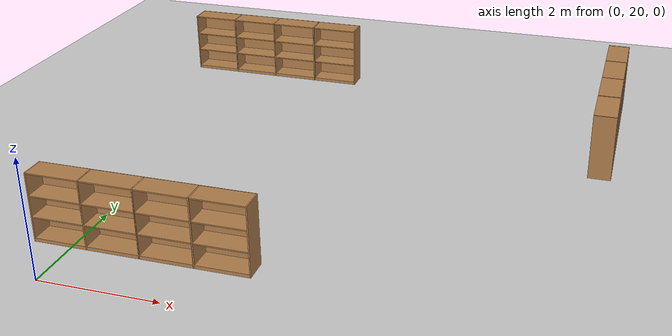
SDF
<sdf version="1.6">
 <world name="default">
  <model name="ground_plane">
   <static>1</static>
   <link name="link">
    <collision name="collision">
     <geometry><plane><normal>0 0 1</normal><size>100 100</size></plane></geometry>
     <surface><friction><ode><mu>100</mu><mu2>50</mu2></ode></friction></surface>
    </collision>
    <visual name="visual">
     <cast_shadows>0</cast_shadows>
     <geometry><plane><normal>0 0 1</normal><size>100 100</size></plane></geometry>
     <material>
      <script><uri>file://media/materials/scripts/gazebo.material</uri><name>Gazebo/Grey</name></script>
     </material>
    </visual>
   </link>
  </model>
  <model name="Bookself-4_clone_0_clone">
   <model name="Bookself-3">
    <model name="bookshelf_0">
     <static>1</static>
     <link name="link">
      <inertial><mass>1</mass></inertial>
      <collision name="back">
       <pose>0 0.005 0.6 0 -0 0</pose>
       <geometry><box><size>0.9 0.01 1.2</size></box></geometry>
      </collision>
      <visual name="visual1">
       <pose>0 0.005 0.6 0 -0 0</pose>
       <geometry><box><size>0.9 0.01 1.2</size></box></geometry>
       <material>
        <script><uri>file://media/materials/scripts/gazebo.material</uri><name>Gazebo/Wood</name></script>
       </material>
      </visual>
      <collision name="left_side">
       <pose>0.45 -0.195 0.6 0 -0 0</pose>
       <geometry><box><size>0.02 0.4 1.2</size></box></geometry>
      </collision>
      <visual name="visual2">
       <pose>0.45 -0.195 0.6 0 -0 0</pose>
       <geometry><box><size>0.02 0.4 1.2</size></box></geometry>
       <material>
        <script><uri>file://media/materials/scripts/gazebo.material</uri><name>Gazebo/Wood</name></script>
       </material>
      </visual>
      <collision name="right_side">
       <pose>-0.45 -0.195 0.6 0 -0 0</pose>
       <geometry><box><size>0.02 0.4 1.2</size></box></geometry>
      </collision>
      <visual name="visual3">
       <pose>-0.45 -0.195 0.6 0 -0 0</pose>
       <geometry><box><size>0.02 0.4 1.2</size></box></geometry>
       <material>
        <script><uri>file://media/materials/scripts/gazebo.material</uri><name>Gazebo/Wood</name></script>
       </material>
      </visual>
      <collision name="bottom">
       <pose>0 -0.195 0.03 0 -0 0</pose>
       <geometry><box><size>0.88 0.4 0.06</size></box></geometry>
      </collision>
      <visual name="visual4">
       <pose>0 -0.195 0.03 0 -0 0</pose>
       <geometry><box><size>0.88 0.4 0.06</size></box></geometry>
       <material>
        <script><uri>file://media/materials/scripts/gazebo.material</uri><name>Gazebo/Wood</name></script>
       </material>
      </visual>
      <collision name="top">
       <pose>0 -0.195 1.19 0 -0 0</pose>
       <geometry><box><size>0.88 0.4 0.02</size></box></geometry>
      </collision>
      <visual name="visual5">
       <pose>0 -0.195 1.19 0 -0 0</pose>
       <geometry><box><size>0.88 0.4 0.02</size></box></geometry>
       <material>
        <script><uri>file://media/materials/scripts/gazebo.material</uri><name>Gazebo/Wood</name></script>
       </material>
      </visual>
      <collision name="low_shelf">
       <pose>0 -0.195 0.43 0 -0 0</pose>
       <geometry><box><size>0.88 0.4 0.02</size></box></geometry>
      </collision>
      <visual name="visual6">
       <pose>0 -0.195 0.43 0 -0 0</pose>
       <geometry><box><size>0.88 0.4 0.02</size></box></geometry>
       <material>
        <script><uri>file://media/materials/scripts/gazebo.material</uri><name>Gazebo/Wood</name></script>
       </material>
      </visual>
      <collision name="high_shelf">
       <pose>0 -0.195 0.8 0 -0 0</pose>
       <geometry><box><size>0.88 0.4 0.02</size></box></geometry>
      </collision>
      <visual name="visual7">
       <pose>0 -0.195 0.8 0 -0 0</pose>
       <geometry><box><size>0.88 0.4 0.02</size></box></geometry>
       <material>
        <script><uri>file://media/materials/scripts/gazebo.material</uri><name>Gazebo/Wood</name></script>
       </material>
      </visual>
     </link>
     <pose>-0.903039 0 0 0 -0 0</pose>
    </model>
    <model name="bookshelf_1">
     <static>1</static>
     <link name="link">
      <inertial><mass>1</mass></inertial>
      <collision name="back">
       <pose>0 0.005 0.6 0 -0 0</pose>
       <geometry><box><size>0.9 0.01 1.2</size></box></geometry>
      </collision>
      <visual name="visual1">
       <pose>0 0.005 0.6 0 -0 0</pose>
       <geometry><box><size>0.9 0.01 1.2</size></box></geometry>
       <material>
        <script><uri>file://media/materials/scripts/gazebo.material</uri><name>Gazebo/Wood</name></script>
       </material>
      </visual>
      <collision name="left_side">
       <pose>0.45 -0.195 0.6 0 -0 0</pose>
       <geometry><box><size>0.02 0.4 1.2</size></box></geometry>
      </collision>
      <visual name="visual2">
       <pose>0.45 -0.195 0.6 0 -0 0</pose>
       <geometry><box><size>0.02 0.4 1.2</size></box></geometry>
       <material>
        <script><uri>file://media/materials/scripts/gazebo.material</uri><name>Gazebo/Wood</name></script>
       </material>
      </visual>
      <collision name="right_side">
       <pose>-0.45 -0.195 0.6 0 -0 0</pose>
       <geometry><box><size>0.02 0.4 1.2</size></box></geometry>
      </collision>
      <visual name="visual3">
       <pose>-0.45 -0.195 0.6 0 -0 0</pose>
       <geometry><box><size>0.02 0.4 1.2</size></box></geometry>
       <material>
        <script><uri>file://media/materials/scripts/gazebo.material</uri><name>Gazebo/Wood</name></script>
       </material>
      </visual>
      <collision name="bottom">
       <pose>0 -0.195 0.03 0 -0 0</pose>
       <geometry><box><size>0.88 0.4 0.06</size></box></geometry>
      </collision>
      <visual name="visual4">
       <pose>0 -0.195 0.03 0 -0 0</pose>
       <geometry><box><size>0.88 0.4 0.06</size></box></geometry>
       <material>
        <script><uri>file://media/materials/scripts/gazebo.material</uri><name>Gazebo/Wood</name></script>
       </material>
      </visual>
      <collision name="top">
       <pose>0 -0.195 1.19 0 -0 0</pose>
       <geometry><box><size>0.88 0.4 0.02</size></box></geometry>
      </collision>
      <visual name="visual5">
       <pose>0 -0.195 1.19 0 -0 0</pose>
       <geometry><box><size>0.88 0.4 0.02</size></box></geometry>
       <material>
        <script><uri>file://media/materials/scripts/gazebo.material</uri><name>Gazebo/Wood</name></script>
       </material>
      </visual>
      <collision name="low_shelf">
       <pose>0 -0.195 0.43 0 -0 0</pose>
       <geometry><box><size>0.88 0.4 0.02</size></box></geometry>
      </collision>
      <visual name="visual6">
       <pose>0 -0.195 0.43 0 -0 0</pose>
       <geometry><box><size>0.88 0.4 0.02</size></box></geometry>
       <material>
        <script><uri>file://media/materials/scripts/gazebo.material</uri><name>Gazebo/Wood</name></script>
       </material>
      </visual>
      <collision name="high_shelf">
       <pose>0 -0.195 0.8 0 -0 0</pose>
       <geometry><box><size>0.88 0.4 0.02</size></box></geometry>
      </collision>
      <visual name="visual7">
       <pose>0 -0.195 0.8 0 -0 0</pose>
       <geometry><box><size>0.88 0.4 0.02</size></box></geometry>
       <material>
        <script><uri>file://media/materials/scripts/gazebo.material</uri><name>Gazebo/Wood</name></script>
       </material>
      </visual>
     </link>
     <pose>0.000535 0 0 0 -0 0</pose>
    </model>
    <model name="bookshelf_1_clone">
     <static>1</static>
     <link name="link">
      <inertial><mass>1</mass></inertial>
      <collision name="back">
       <pose>0 0.005 0.6 0 -0 0</pose>
       <geometry><box><size>0.9 0.01 1.2</size></box></geometry>
      </collision>
      <visual name="visual1">
       <pose>0 0.005 0.6 0 -0 0</pose>
       <geometry><box><size>0.9 0.01 1.2</size></box></geometry>
       <material>
        <script><uri>file://media/materials/scripts/gazebo.material</uri><name>Gazebo/Wood</name></script>
       </material>
      </visual>
      <collision name="left_side">
       <pose>0.45 -0.195 0.6 0 -0 0</pose>
       <geometry><box><size>0.02 0.4 1.2</size></box></geometry>
      </collision>
      <visual name="visual2">
       <pose>0.45 -0.195 0.6 0 -0 0</pose>
       <geometry><box><size>0.02 0.4 1.2</size></box></geometry>
       <material>
        <script><uri>file://media/materials/scripts/gazebo.material</uri><name>Gazebo/Wood</name></script>
       </material>
      </visual>
      <collision name="right_side">
       <pose>-0.45 -0.195 0.6 0 -0 0</pose>
       <geometry><box><size>0.02 0.4 1.2</size></box></geometry>
      </collision>
      <visual name="visual3">
       <pose>-0.45 -0.195 0.6 0 -0 0</pose>
       <geometry><box><size>0.02 0.4 1.2</size></box></geometry>
       <material>
        <script><uri>file://media/materials/scripts/gazebo.material</uri><name>Gazebo/Wood</name></script>
       </material>
      </visual>
      <collision name="bottom">
       <pose>0 -0.195 0.03 0 -0 0</pose>
       <geometry><box><size>0.88 0.4 0.06</size></box></geometry>
      </collision>
      <visual name="visual4">
       <pose>0 -0.195 0.03 0 -0 0</pose>
       <geometry><box><size>0.88 0.4 0.06</size></box></geometry>
       <material>
        <script><uri>file://media/materials/scripts/gazebo.material</uri><name>Gazebo/Wood</name></script>
       </material>
      </visual>
      <collision name="top">
       <pose>0 -0.195 1.19 0 -0 0</pose>
       <geometry><box><size>0.88 0.4 0.02</size></box></geometry>
      </collision>
      <visual name="visual5">
       <pose>0 -0.195 1.19 0 -0 0</pose>
       <geometry><box><size>0.88 0.4 0.02</size></box></geometry>
       <material>
        <script><uri>file://media/materials/scripts/gazebo.material</uri><name>Gazebo/Wood</name></script>
       </material>
      </visual>
      <collision name="low_shelf">
       <pose>0 -0.195 0.43 0 -0 0</pose>
       <geometry><box><size>0.88 0.4 0.02</size></box></geometry>
      </collision>
      <visual name="visual6">
       <pose>0 -0.195 0.43 0 -0 0</pose>
       <geometry><box><size>0.88 0.4 0.02</size></box></geometry>
       <material>
        <script><uri>file://media/materials/scripts/gazebo.material</uri><name>Gazebo/Wood</name></script>
       </material>
      </visual>
      <collision name="high_shelf">
       <pose>0 -0.195 0.8 0 -0 0</pose>
       <geometry><box><size>0.88 0.4 0.02</size></box></geometry>
      </collision>
      <visual name="visual7">
       <pose>0 -0.195 0.8 0 -0 0</pose>
       <geometry><box><size>0.88 0.4 0.02</size></box></geometry>
       <material>
        <script><uri>file://media/materials/scripts/gazebo.material</uri><name>Gazebo/Wood</name></script>
       </material>
      </visual>
     </link>
     <pose>0.902502 0 0 0 -0 0</pose>
    </model>
    <static>1</static>
    <pose>-0.906894 3e-05 0 0 -0 0</pose>
   </model>
   <model name="bookshelf">
    <static>1</static>
    <link name="link">
     <inertial><mass>1</mass></inertial>
     <collision name="back">
      <pose>0 0.005 0.6 0 -0 0</pose>
      <geometry><box><size>0.9 0.01 1.2</size></box></geometry>
     </collision>
     <visual name="visual1">
      <pose>0 0.005 0.6 0 -0 0</pose>
      <geometry><box><size>0.9 0.01 1.2</size></box></geometry>
      <material>
       <script><uri>file://media/materials/scripts/gazebo.material</uri><name>Gazebo/Wood</name></script>
      </material>
     </visual>
     <collision name="left_side">
      <pose>0.45 -0.195 0.6 0 -0 0</pose>
      <geometry><box><size>0.02 0.4 1.2</size></box></geometry>
     </collision>
     <visual name="visual2">
      <pose>0.45 -0.195 0.6 0 -0 0</pose>
      <geometry><box><size>0.02 0.4 1.2</size></box></geometry>
      <material>
       <script><uri>file://media/materials/scripts/gazebo.material</uri><name>Gazebo/Wood</name></script>
      </material>
     </visual>
     <collision name="right_side">
      <pose>-0.45 -0.195 0.6 0 -0 0</pose>
      <geometry><box><size>0.02 0.4 1.2</size></box></geometry>
     </collision>
     <visual name="visual3">
      <pose>-0.45 -0.195 0.6 0 -0 0</pose>
      <geometry><box><size>0.02 0.4 1.2</size></box></geometry>
      <material>
       <script><uri>file://media/materials/scripts/gazebo.material</uri><name>Gazebo/Wood</name></script>
      </material>
     </visual>
     <collision name="bottom">
      <pose>0 -0.195 0.03 0 -0 0</pose>
      <geometry><box><size>0.88 0.4 0.06</size></box></geometry>
     </collision>
     <visual name="visual4">
      <pose>0 -0.195 0.03 0 -0 0</pose>
      <geometry><box><size>0.88 0.4 0.06</size></box></geometry>
      <material>
       <script><uri>file://media/materials/scripts/gazebo.material</uri><name>Gazebo/Wood</name></script>
      </material>
     </visual>
     <collision name="top">
      <pose>0 -0.195 1.19 0 -0 0</pose>
      <geometry><box><size>0.88 0.4 0.02</size></box></geometry>
     </collision>
     <visual name="visual5">
      <pose>0 -0.195 1.19 0 -0 0</pose>
      <geometry><box><size>0.88 0.4 0.02</size></box></geometry>
      <material>
       <script><uri>file://media/materials/scripts/gazebo.material</uri><name>Gazebo/Wood</name></script>
      </material>
     </visual>
     <collision name="low_shelf">
      <pose>0 -0.195 0.43 0 -0 0</pose>
      <geometry><box><size>0.88 0.4 0.02</size></box></geometry>
     </collision>
     <visual name="visual6">
      <pose>0 -0.195 0.43 0 -0 0</pose>
      <geometry><box><size>0.88 0.4 0.02</size></box></geometry>
      <material>
       <script><uri>file://media/materials/scripts/gazebo.material</uri><name>Gazebo/Wood</name></script>
      </material>
     </visual>
     <collision name="high_shelf">
      <pose>0 -0.195 0.8 0 -0 0</pose>
      <geometry><box><size>0.88 0.4 0.02</size></box></geometry>
     </collision>
     <visual name="visual7">
      <pose>0 -0.195 0.8 0 -0 0</pose>
      <geometry><box><size>0.88 0.4 0.02</size></box></geometry>
      <material>
       <script><uri>file://media/materials/scripts/gazebo.material</uri><name>Gazebo/Wood</name></script>
      </material>
     </visual>
    </link>
    <pose>0.906808 3e-05 0 0 -0 0</pose>
   </model>
   <static>0</static>
   <pose>1.61635 21.337 0 0 -0 0</pose>
  </model>
  <model name="Bookself-4_clone_0_clone_0">
   <model name="Bookself-3">
    <model name="bookshelf_0">
     <static>1</static>
     <link name="link">
      <inertial><mass>1</mass></inertial>
      <collision name="back">
       <pose>0 0.005 0.6 0 -0 0</pose>
       <geometry><box><size>0.9 0.01 1.2</size></box></geometry>
      </collision>
      <visual name="visual1">
       <pose>0 0.005 0.6 0 -0 0</pose>
       <geometry><box><size>0.9 0.01 1.2</size></box></geometry>
       <material>
        <script><uri>file://media/materials/scripts/gazebo.material</uri><name>Gazebo/Wood</name></script>
       </material>
      </visual>
      <collision name="left_side">
       <pose>0.45 -0.195 0.6 0 -0 0</pose>
       <geometry><box><size>0.02 0.4 1.2</size></box></geometry>
      </collision>
      <visual name="visual2">
       <pose>0.45 -0.195 0.6 0 -0 0</pose>
       <geometry><box><size>0.02 0.4 1.2</size></box></geometry>
       <material>
        <script><uri>file://media/materials/scripts/gazebo.material</uri><name>Gazebo/Wood</name></script>
       </material>
      </visual>
      <collision name="right_side">
       <pose>-0.45 -0.195 0.6 0 -0 0</pose>
       <geometry><box><size>0.02 0.4 1.2</size></box></geometry>
      </collision>
      <visual name="visual3">
       <pose>-0.45 -0.195 0.6 0 -0 0</pose>
       <geometry><box><size>0.02 0.4 1.2</size></box></geometry>
       <material>
        <script><uri>file://media/materials/scripts/gazebo.material</uri><name>Gazebo/Wood</name></script>
       </material>
      </visual>
      <collision name="bottom">
       <pose>0 -0.195 0.03 0 -0 0</pose>
       <geometry><box><size>0.88 0.4 0.06</size></box></geometry>
      </collision>
      <visual name="visual4">
       <pose>0 -0.195 0.03 0 -0 0</pose>
       <geometry><box><size>0.88 0.4 0.06</size></box></geometry>
       <material>
        <script><uri>file://media/materials/scripts/gazebo.material</uri><name>Gazebo/Wood</name></script>
       </material>
      </visual>
      <collision name="top">
       <pose>0 -0.195 1.19 0 -0 0</pose>
       <geometry><box><size>0.88 0.4 0.02</size></box></geometry>
      </collision>
      <visual name="visual5">
       <pose>0 -0.195 1.19 0 -0 0</pose>
       <geometry><box><size>0.88 0.4 0.02</size></box></geometry>
       <material>
        <script><uri>file://media/materials/scripts/gazebo.material</uri><name>Gazebo/Wood</name></script>
       </material>
      </visual>
      <collision name="low_shelf">
       <pose>0 -0.195 0.43 0 -0 0</pose>
       <geometry><box><size>0.88 0.4 0.02</size></box></geometry>
      </collision>
      <visual name="visual6">
       <pose>0 -0.195 0.43 0 -0 0</pose>
       <geometry><box><size>0.88 0.4 0.02</size></box></geometry>
       <material>
        <script><uri>file://media/materials/scripts/gazebo.material</uri><name>Gazebo/Wood</name></script>
       </material>
      </visual>
      <collision name="high_shelf">
       <pose>0 -0.195 0.8 0 -0 0</pose>
       <geometry><box><size>0.88 0.4 0.02</size></box></geometry>
      </collision>
      <visual name="visual7">
       <pose>0 -0.195 0.8 0 -0 0</pose>
       <geometry><box><size>0.88 0.4 0.02</size></box></geometry>
       <material>
        <script><uri>file://media/materials/scripts/gazebo.material</uri><name>Gazebo/Wood</name></script>
       </material>
      </visual>
     </link>
     <pose>-0.903039 0 0 0 -0 0</pose>
    </model>
    <model name="bookshelf_1">
     <static>1</static>
     <link name="link">
      <inertial><mass>1</mass></inertial>
      <collision name="back">
       <pose>0 0.005 0.6 0 -0 0</pose>
       <geometry><box><size>0.9 0.01 1.2</size></box></geometry>
      </collision>
      <visual name="visual1">
       <pose>0 0.005 0.6 0 -0 0</pose>
       <geometry><box><size>0.9 0.01 1.2</size></box></geometry>
       <material>
        <script><uri>file://media/materials/scripts/gazebo.material</uri><name>Gazebo/Wood</name></script>
       </material>
      </visual>
      <collision name="left_side">
       <pose>0.45 -0.195 0.6 0 -0 0</pose>
       <geometry><box><size>0.02 0.4 1.2</size></box></geometry>
      </collision>
      <visual name="visual2">
       <pose>0.45 -0.195 0.6 0 -0 0</pose>
       <geometry><box><size>0.02 0.4 1.2</size></box></geometry>
       <material>
        <script><uri>file://media/materials/scripts/gazebo.material</uri><name>Gazebo/Wood</name></script>
       </material>
      </visual>
      <collision name="right_side">
       <pose>-0.45 -0.195 0.6 0 -0 0</pose>
       <geometry><box><size>0.02 0.4 1.2</size></box></geometry>
      </collision>
      <visual name="visual3">
       <pose>-0.45 -0.195 0.6 0 -0 0</pose>
       <geometry><box><size>0.02 0.4 1.2</size></box></geometry>
       <material>
        <script><uri>file://media/materials/scripts/gazebo.material</uri><name>Gazebo/Wood</name></script>
       </material>
      </visual>
      <collision name="bottom">
       <pose>0 -0.195 0.03 0 -0 0</pose>
       <geometry><box><size>0.88 0.4 0.06</size></box></geometry>
      </collision>
      <visual name="visual4">
       <pose>0 -0.195 0.03 0 -0 0</pose>
       <geometry><box><size>0.88 0.4 0.06</size></box></geometry>
       <material>
        <script><uri>file://media/materials/scripts/gazebo.material</uri><name>Gazebo/Wood</name></script>
       </material>
      </visual>
      <collision name="top">
       <pose>0 -0.195 1.19 0 -0 0</pose>
       <geometry><box><size>0.88 0.4 0.02</size></box></geometry>
      </collision>
      <visual name="visual5">
       <pose>0 -0.195 1.19 0 -0 0</pose>
       <geometry><box><size>0.88 0.4 0.02</size></box></geometry>
       <material>
        <script><uri>file://media/materials/scripts/gazebo.material</uri><name>Gazebo/Wood</name></script>
       </material>
      </visual>
      <collision name="low_shelf">
       <pose>0 -0.195 0.43 0 -0 0</pose>
       <geometry><box><size>0.88 0.4 0.02</size></box></geometry>
      </collision>
      <visual name="visual6">
       <pose>0 -0.195 0.43 0 -0 0</pose>
       <geometry><box><size>0.88 0.4 0.02</size></box></geometry>
       <material>
        <script><uri>file://media/materials/scripts/gazebo.material</uri><name>Gazebo/Wood</name></script>
       </material>
      </visual>
      <collision name="high_shelf">
       <pose>0 -0.195 0.8 0 -0 0</pose>
       <geometry><box><size>0.88 0.4 0.02</size></box></geometry>
      </collision>
      <visual name="visual7">
       <pose>0 -0.195 0.8 0 -0 0</pose>
       <geometry><box><size>0.88 0.4 0.02</size></box></geometry>
       <material>
        <script><uri>file://media/materials/scripts/gazebo.material</uri><name>Gazebo/Wood</name></script>
       </material>
      </visual>
     </link>
     <pose>0.000535 0 0 0 -0 0</pose>
    </model>
    <model name="bookshelf_1_clone">
     <static>1</static>
     <link name="link">
      <inertial><mass>1</mass></inertial>
      <collision name="back">
       <pose>0 0.005 0.6 0 -0 0</pose>
       <geometry><box><size>0.9 0.01 1.2</size></box></geometry>
      </collision>
      <visual name="visual1">
       <pose>0 0.005 0.6 0 -0 0</pose>
       <geometry><box><size>0.9 0.01 1.2</size></box></geometry>
       <material>
        <script><uri>file://media/materials/scripts/gazebo.material</uri><name>Gazebo/Wood</name></script>
       </material>
      </visual>
      <collision name="left_side">
       <pose>0.45 -0.195 0.6 0 -0 0</pose>
       <geometry><box><size>0.02 0.4 1.2</size></box></geometry>
      </collision>
      <visual name="visual2">
       <pose>0.45 -0.195 0.6 0 -0 0</pose>
       <geometry><box><size>0.02 0.4 1.2</size></box></geometry>
       <material>
        <script><uri>file://media/materials/scripts/gazebo.material</uri><name>Gazebo/Wood</name></script>
       </material>
      </visual>
      <collision name="right_side">
       <pose>-0.45 -0.195 0.6 0 -0 0</pose>
       <geometry><box><size>0.02 0.4 1.2</size></box></geometry>
      </collision>
      <visual name="visual3">
       <pose>-0.45 -0.195 0.6 0 -0 0</pose>
       <geometry><box><size>0.02 0.4 1.2</size></box></geometry>
       <material>
        <script><uri>file://media/materials/scripts/gazebo.material</uri><name>Gazebo/Wood</name></script>
       </material>
      </visual>
      <collision name="bottom">
       <pose>0 -0.195 0.03 0 -0 0</pose>
       <geometry><box><size>0.88 0.4 0.06</size></box></geometry>
      </collision>
      <visual name="visual4">
       <pose>0 -0.195 0.03 0 -0 0</pose>
       <geometry><box><size>0.88 0.4 0.06</size></box></geometry>
       <material>
        <script><uri>file://media/materials/scripts/gazebo.material</uri><name>Gazebo/Wood</name></script>
       </material>
      </visual>
      <collision name="top">
       <pose>0 -0.195 1.19 0 -0 0</pose>
       <geometry><box><size>0.88 0.4 0.02</size></box></geometry>
      </collision>
      <visual name="visual5">
       <pose>0 -0.195 1.19 0 -0 0</pose>
       <geometry><box><size>0.88 0.4 0.02</size></box></geometry>
       <material>
        <script><uri>file://media/materials/scripts/gazebo.material</uri><name>Gazebo/Wood</name></script>
       </material>
      </visual>
      <collision name="low_shelf">
       <pose>0 -0.195 0.43 0 -0 0</pose>
       <geometry><box><size>0.88 0.4 0.02</size></box></geometry>
      </collision>
      <visual name="visual6">
       <pose>0 -0.195 0.43 0 -0 0</pose>
       <geometry><box><size>0.88 0.4 0.02</size></box></geometry>
       <material>
        <script><uri>file://media/materials/scripts/gazebo.material</uri><name>Gazebo/Wood</name></script>
       </material>
      </visual>
      <collision name="high_shelf">
       <pose>0 -0.195 0.8 0 -0 0</pose>
       <geometry><box><size>0.88 0.4 0.02</size></box></geometry>
      </collision>
      <visual name="visual7">
       <pose>0 -0.195 0.8 0 -0 0</pose>
       <geometry><box><size>0.88 0.4 0.02</size></box></geometry>
       <material>
        <script><uri>file://media/materials/scripts/gazebo.material</uri><name>Gazebo/Wood</name></script>
       </material>
      </visual>
     </link>
     <pose>0.902502 0 0 0 -0 0</pose>
    </model>
    <static>1</static>
    <pose>-0.906894 3e-05 0 0 -0 0</pose>
   </model>
   <model name="bookshelf">
    <static>1</static>
    <link name="link">
     <inertial><mass>1</mass></inertial>
     <collision name="back">
      <pose>0 0.005 0.6 0 -0 0</pose>
      <geometry><box><size>0.9 0.01 1.2</size></box></geometry>
     </collision>
     <visual name="visual1">
      <pose>0 0.005 0.6 0 -0 0</pose>
      <geometry><box><size>0.9 0.01 1.2</size></box></geometry>
      <material>
       <script><uri>file://media/materials/scripts/gazebo.material</uri><name>Gazebo/Wood</name></script>
      </material>
     </visual>
     <collision name="left_side">
      <pose>0.45 -0.195 0.6 0 -0 0</pose>
      <geometry><box><size>0.02 0.4 1.2</size></box></geometry>
     </collision>
     <visual name="visual2">
      <pose>0.45 -0.195 0.6 0 -0 0</pose>
      <geometry><box><size>0.02 0.4 1.2</size></box></geometry>
      <material>
       <script><uri>file://media/materials/scripts/gazebo.material</uri><name>Gazebo/Wood</name></script>
      </material>
     </visual>
     <collision name="right_side">
      <pose>-0.45 -0.195 0.6 0 -0 0</pose>
      <geometry><box><size>0.02 0.4 1.2</size></box></geometry>
     </collision>
     <visual name="visual3">
      <pose>-0.45 -0.195 0.6 0 -0 0</pose>
      <geometry><box><size>0.02 0.4 1.2</size></box></geometry>
      <material>
       <script><uri>file://media/materials/scripts/gazebo.material</uri><name>Gazebo/Wood</name></script>
      </material>
     </visual>
     <collision name="bottom">
      <pose>0 -0.195 0.03 0 -0 0</pose>
      <geometry><box><size>0.88 0.4 0.06</size></box></geometry>
     </collision>
     <visual name="visual4">
      <pose>0 -0.195 0.03 0 -0 0</pose>
      <geometry><box><size>0.88 0.4 0.06</size></box></geometry>
      <material>
       <script><uri>file://media/materials/scripts/gazebo.material</uri><name>Gazebo/Wood</name></script>
      </material>
     </visual>
     <collision name="top">
      <pose>0 -0.195 1.19 0 -0 0</pose>
      <geometry><box><size>0.88 0.4 0.02</size></box></geometry>
     </collision>
     <visual name="visual5">
      <pose>0 -0.195 1.19 0 -0 0</pose>
      <geometry><box><size>0.88 0.4 0.02</size></box></geometry>
      <material>
       <script><uri>file://media/materials/scripts/gazebo.material</uri><name>Gazebo/Wood</name></script>
      </material>
     </visual>
     <collision name="low_shelf">
      <pose>0 -0.195 0.43 0 -0 0</pose>
      <geometry><box><size>0.88 0.4 0.02</size></box></geometry>
     </collision>
     <visual name="visual6">
      <pose>0 -0.195 0.43 0 -0 0</pose>
      <geometry><box><size>0.88 0.4 0.02</size></box></geometry>
      <material>
       <script><uri>file://media/materials/scripts/gazebo.material</uri><name>Gazebo/Wood</name></script>
      </material>
     </visual>
     <collision name="high_shelf">
      <pose>0 -0.195 0.8 0 -0 0</pose>
      <geometry><box><size>0.88 0.4 0.02</size></box></geometry>
     </collision>
     <visual name="visual7">
      <pose>0 -0.195 0.8 0 -0 0</pose>
      <geometry><box><size>0.88 0.4 0.02</size></box></geometry>
      <material>
       <script><uri>file://media/materials/scripts/gazebo.material</uri><name>Gazebo/Wood</name></script>
      </material>
     </visual>
    </link>
    <pose>0.906808 3e-05 0 0 -0 0</pose>
   </model>
   <static>0</static>
   <pose>0.839929 28.8868 0 0 -0 0</pose>
  </model>
  <model name="Bookself-4_clone_14_clone_3_clone_clone">
   <model name="Bookself-3">
    <model name="bookshelf_0">
     <static>1</static>
     <link name="link">
      <inertial><mass>1</mass></inertial>
      <collision name="back">
       <pose>0 0.005 0.6 0 -0 0</pose>
       <geometry><box><size>0.9 0.01 1.2</size></box></geometry>
      </collision>
      <visual name="visual1">
       <pose>0 0.005 0.6 0 -0 0</pose>
       <geometry><box><size>0.9 0.01 1.2</size></box></geometry>
       <material>
        <script><uri>file://media/materials/scripts/gazebo.material</uri><name>Gazebo/Wood</name></script>
       </material>
      </visual>
      <collision name="left_side">
       <pose>0.45 -0.195 0.6 0 -0 0</pose>
       <geometry><box><size>0.02 0.4 1.2</size></box></geometry>
      </collision>
      <visual name="visual2">
       <pose>0.45 -0.195 0.6 0 -0 0</pose>
       <geometry><box><size>0.02 0.4 1.2</size></box></geometry>
       <material>
        <script><uri>file://media/materials/scripts/gazebo.material</uri><name>Gazebo/Wood</name></script>
       </material>
      </visual>
      <collision name="right_side">
       <pose>-0.45 -0.195 0.6 0 -0 0</pose>
       <geometry><box><size>0.02 0.4 1.2</size></box></geometry>
      </collision>
      <visual name="visual3">
       <pose>-0.45 -0.195 0.6 0 -0 0</pose>
       <geometry><box><size>0.02 0.4 1.2</size></box></geometry>
       <material>
        <script><uri>file://media/materials/scripts/gazebo.material</uri><name>Gazebo/Wood</name></script>
       </material>
      </visual>
      <collision name="bottom">
       <pose>0 -0.195 0.03 0 -0 0</pose>
       <geometry><box><size>0.88 0.4 0.06</size></box></geometry>
      </collision>
      <visual name="visual4">
       <pose>0 -0.195 0.03 0 -0 0</pose>
       <geometry><box><size>0.88 0.4 0.06</size></box></geometry>
       <material>
        <script><uri>file://media/materials/scripts/gazebo.material</uri><name>Gazebo/Wood</name></script>
       </material>
      </visual>
      <collision name="top">
       <pose>0 -0.195 1.19 0 -0 0</pose>
       <geometry><box><size>0.88 0.4 0.02</size></box></geometry>
      </collision>
      <visual name="visual5">
       <pose>0 -0.195 1.19 0 -0 0</pose>
       <geometry><box><size>0.88 0.4 0.02</size></box></geometry>
       <material>
        <script><uri>file://media/materials/scripts/gazebo.material</uri><name>Gazebo/Wood</name></script>
       </material>
      </visual>
      <collision name="low_shelf">
       <pose>0 -0.195 0.43 0 -0 0</pose>
       <geometry><box><size>0.88 0.4 0.02</size></box></geometry>
      </collision>
      <visual name="visual6">
       <pose>0 -0.195 0.43 0 -0 0</pose>
       <geometry><box><size>0.88 0.4 0.02</size></box></geometry>
       <material>
        <script><uri>file://media/materials/scripts/gazebo.material</uri><name>Gazebo/Wood</name></script>
       </material>
      </visual>
      <collision name="high_shelf">
       <pose>0 -0.195 0.8 0 -0 0</pose>
       <geometry><box><size>0.88 0.4 0.02</size></box></geometry>
      </collision>
      <visual name="visual7">
       <pose>0 -0.195 0.8 0 -0 0</pose>
       <geometry><box><size>0.88 0.4 0.02</size></box></geometry>
       <material>
        <script><uri>file://media/materials/scripts/gazebo.material</uri><name>Gazebo/Wood</name></script>
       </material>
      </visual>
     </link>
     <pose>-0.903039 0 0 0 -0 0</pose>
    </model>
    <model name="bookshelf_1">
     <static>1</static>
     <link name="link">
      <inertial><mass>1</mass></inertial>
      <collision name="back">
       <pose>0 0.005 0.6 0 -0 0</pose>
       <geometry><box><size>0.9 0.01 1.2</size></box></geometry>
      </collision>
      <visual name="visual1">
       <pose>0 0.005 0.6 0 -0 0</pose>
       <geometry><box><size>0.9 0.01 1.2</size></box></geometry>
       <material>
        <script><uri>file://media/materials/scripts/gazebo.material</uri><name>Gazebo/Wood</name></script>
       </material>
      </visual>
      <collision name="left_side">
       <pose>0.45 -0.195 0.6 0 -0 0</pose>
       <geometry><box><size>0.02 0.4 1.2</size></box></geometry>
      </collision>
      <visual name="visual2">
       <pose>0.45 -0.195 0.6 0 -0 0</pose>
       <geometry><box><size>0.02 0.4 1.2</size></box></geometry>
       <material>
        <script><uri>file://media/materials/scripts/gazebo.material</uri><name>Gazebo/Wood</name></script>
       </material>
      </visual>
      <collision name="right_side">
       <pose>-0.45 -0.195 0.6 0 -0 0</pose>
       <geometry><box><size>0.02 0.4 1.2</size></box></geometry>
      </collision>
      <visual name="visual3">
       <pose>-0.45 -0.195 0.6 0 -0 0</pose>
       <geometry><box><size>0.02 0.4 1.2</size></box></geometry>
       <material>
        <script><uri>file://media/materials/scripts/gazebo.material</uri><name>Gazebo/Wood</name></script>
       </material>
      </visual>
      <collision name="bottom">
       <pose>0 -0.195 0.03 0 -0 0</pose>
       <geometry><box><size>0.88 0.4 0.06</size></box></geometry>
      </collision>
      <visual name="visual4">
       <pose>0 -0.195 0.03 0 -0 0</pose>
       <geometry><box><size>0.88 0.4 0.06</size></box></geometry>
       <material>
        <script><uri>file://media/materials/scripts/gazebo.material</uri><name>Gazebo/Wood</name></script>
       </material>
      </visual>
      <collision name="top">
       <pose>0 -0.195 1.19 0 -0 0</pose>
       <geometry><box><size>0.88 0.4 0.02</size></box></geometry>
      </collision>
      <visual name="visual5">
       <pose>0 -0.195 1.19 0 -0 0</pose>
       <geometry><box><size>0.88 0.4 0.02</size></box></geometry>
       <material>
        <script><uri>file://media/materials/scripts/gazebo.material</uri><name>Gazebo/Wood</name></script>
       </material>
      </visual>
      <collision name="low_shelf">
       <pose>0 -0.195 0.43 0 -0 0</pose>
       <geometry><box><size>0.88 0.4 0.02</size></box></geometry>
      </collision>
      <visual name="visual6">
       <pose>0 -0.195 0.43 0 -0 0</pose>
       <geometry><box><size>0.88 0.4 0.02</size></box></geometry>
       <material>
        <script><uri>file://media/materials/scripts/gazebo.material</uri><name>Gazebo/Wood</name></script>
       </material>
      </visual>
      <collision name="high_shelf">
       <pose>0 -0.195 0.8 0 -0 0</pose>
       <geometry><box><size>0.88 0.4 0.02</size></box></geometry>
      </collision>
      <visual name="visual7">
       <pose>0 -0.195 0.8 0 -0 0</pose>
       <geometry><box><size>0.88 0.4 0.02</size></box></geometry>
       <material>
        <script><uri>file://media/materials/scripts/gazebo.material</uri><name>Gazebo/Wood</name></script>
       </material>
      </visual>
     </link>
     <pose>0.000535 0 0 0 -0 0</pose>
    </model>
    <model name="bookshelf_1_clone">
     <static>1</static>
     <link name="link">
      <inertial><mass>1</mass></inertial>
      <collision name="back">
       <pose>0 0.005 0.6 0 -0 0</pose>
       <geometry><box><size>0.9 0.01 1.2</size></box></geometry>
      </collision>
      <visual name="visual1">
       <pose>0 0.005 0.6 0 -0 0</pose>
       <geometry><box><size>0.9 0.01 1.2</size></box></geometry>
       <material>
        <script><uri>file://media/materials/scripts/gazebo.material</uri><name>Gazebo/Wood</name></script>
       </material>
      </visual>
      <collision name="left_side">
       <pose>0.45 -0.195 0.6 0 -0 0</pose>
       <geometry><box><size>0.02 0.4 1.2</size></box></geometry>
      </collision>
      <visual name="visual2">
       <pose>0.45 -0.195 0.6 0 -0 0</pose>
       <geometry><box><size>0.02 0.4 1.2</size></box></geometry>
       <material>
        <script><uri>file://media/materials/scripts/gazebo.material</uri><name>Gazebo/Wood</name></script>
       </material>
      </visual>
      <collision name="right_side">
       <pose>-0.45 -0.195 0.6 0 -0 0</pose>
       <geometry><box><size>0.02 0.4 1.2</size></box></geometry>
      </collision>
      <visual name="visual3">
       <pose>-0.45 -0.195 0.6 0 -0 0</pose>
       <geometry><box><size>0.02 0.4 1.2</size></box></geometry>
       <material>
        <script><uri>file://media/materials/scripts/gazebo.material</uri><name>Gazebo/Wood</name></script>
       </material>
      </visual>
      <collision name="bottom">
       <pose>0 -0.195 0.03 0 -0 0</pose>
       <geometry><box><size>0.88 0.4 0.06</size></box></geometry>
      </collision>
      <visual name="visual4">
       <pose>0 -0.195 0.03 0 -0 0</pose>
       <geometry><box><size>0.88 0.4 0.06</size></box></geometry>
       <material>
        <script><uri>file://media/materials/scripts/gazebo.material</uri><name>Gazebo/Wood</name></script>
       </material>
      </visual>
      <collision name="top">
       <pose>0 -0.195 1.19 0 -0 0</pose>
       <geometry><box><size>0.88 0.4 0.02</size></box></geometry>
      </collision>
      <visual name="visual5">
       <pose>0 -0.195 1.19 0 -0 0</pose>
       <geometry><box><size>0.88 0.4 0.02</size></box></geometry>
       <material>
        <script><uri>file://media/materials/scripts/gazebo.material</uri><name>Gazebo/Wood</name></script>
       </material>
      </visual>
      <collision name="low_shelf">
       <pose>0 -0.195 0.43 0 -0 0</pose>
       <geometry><box><size>0.88 0.4 0.02</size></box></geometry>
      </collision>
      <visual name="visual6">
       <pose>0 -0.195 0.43 0 -0 0</pose>
       <geometry><box><size>0.88 0.4 0.02</size></box></geometry>
       <material>
        <script><uri>file://media/materials/scripts/gazebo.material</uri><name>Gazebo/Wood</name></script>
       </material>
      </visual>
      <collision name="high_shelf">
       <pose>0 -0.195 0.8 0 -0 0</pose>
       <geometry><box><size>0.88 0.4 0.02</size></box></geometry>
      </collision>
      <visual name="visual7">
       <pose>0 -0.195 0.8 0 -0 0</pose>
       <geometry><box><size>0.88 0.4 0.02</size></box></geometry>
       <material>
        <script><uri>file://media/materials/scripts/gazebo.material</uri><name>Gazebo/Wood</name></script>
       </material>
      </visual>
     </link>
     <pose>0.902502 0 0 0 -0 0</pose>
    </model>
    <static>1</static>
    <pose>-0.906894 3e-05 0 0 -0 0</pose>
   </model>
   <model name="bookshelf">
    <static>1</static>
    <link name="link">
     <inertial><mass>1</mass></inertial>
     <collision name="back">
      <pose>0 0.005 0.6 0 -0 0</pose>
      <geometry><box><size>0.9 0.01 1.2</size></box></geometry>
     </collision>
     <visual name="visual1">
      <pose>0 0.005 0.6 0 -0 0</pose>
      <geometry><box><size>0.9 0.01 1.2</size></box></geometry>
      <material>
       <script><uri>file://media/materials/scripts/gazebo.material</uri><name>Gazebo/Wood</name></script>
      </material>
     </visual>
     <collision name="left_side">
      <pose>0.45 -0.195 0.6 0 -0 0</pose>
      <geometry><box><size>0.02 0.4 1.2</size></box></geometry>
     </collision>
     <visual name="visual2">
      <pose>0.45 -0.195 0.6 0 -0 0</pose>
      <geometry><box><size>0.02 0.4 1.2</size></box></geometry>
      <material>
       <script><uri>file://media/materials/scripts/gazebo.material</uri><name>Gazebo/Wood</name></script>
      </material>
     </visual>
     <collision name="right_side">
      <pose>-0.45 -0.195 0.6 0 -0 0</pose>
      <geometry><box><size>0.02 0.4 1.2</size></box></geometry>
     </collision>
     <visual name="visual3">
      <pose>-0.45 -0.195 0.6 0 -0 0</pose>
      <geometry><box><size>0.02 0.4 1.2</size></box></geometry>
      <material>
       <script><uri>file://media/materials/scripts/gazebo.material</uri><name>Gazebo/Wood</name></script>
      </material>
     </visual>
     <collision name="bottom">
      <pose>0 -0.195 0.03 0 -0 0</pose>
      <geometry><box><size>0.88 0.4 0.06</size></box></geometry>
     </collision>
     <visual name="visual4">
      <pose>0 -0.195 0.03 0 -0 0</pose>
      <geometry><box><size>0.88 0.4 0.06</size></box></geometry>
      <material>
       <script><uri>file://media/materials/scripts/gazebo.material</uri><name>Gazebo/Wood</name></script>
      </material>
     </visual>
     <collision name="top">
      <pose>0 -0.195 1.19 0 -0 0</pose>
      <geometry><box><size>0.88 0.4 0.02</size></box></geometry>
     </collision>
     <visual name="visual5">
      <pose>0 -0.195 1.19 0 -0 0</pose>
      <geometry><box><size>0.88 0.4 0.02</size></box></geometry>
      <material>
       <script><uri>file://media/materials/scripts/gazebo.material</uri><name>Gazebo/Wood</name></script>
      </material>
     </visual>
     <collision name="low_shelf">
      <pose>0 -0.195 0.43 0 -0 0</pose>
      <geometry><box><size>0.88 0.4 0.02</size></box></geometry>
     </collision>
     <visual name="visual6">
      <pose>0 -0.195 0.43 0 -0 0</pose>
      <geometry><box><size>0.88 0.4 0.02</size></box></geometry>
      <material>
       <script><uri>file://media/materials/scripts/gazebo.material</uri><name>Gazebo/Wood</name></script>
      </material>
     </visual>
     <collision name="high_shelf">
      <pose>0 -0.195 0.8 0 -0 0</pose>
      <geometry><box><size>0.88 0.4 0.02</size></box></geometry>
     </collision>
     <visual name="visual7">
      <pose>0 -0.195 0.8 0 -0 0</pose>
      <geometry><box><size>0.88 0.4 0.02</size></box></geometry>
      <material>
       <script><uri>file://media/materials/scripts/gazebo.material</uri><name>Gazebo/Wood</name></script>
      </material>
     </visual>
    </link>
    <pose>0.906808 3e-05 0 0 -0 0</pose>
   </model>
   <static>0</static>
   <pose>7.8005 26.9169 0 0 0 -1.5707</pose>
  </model>
 </world>
</sdf>
